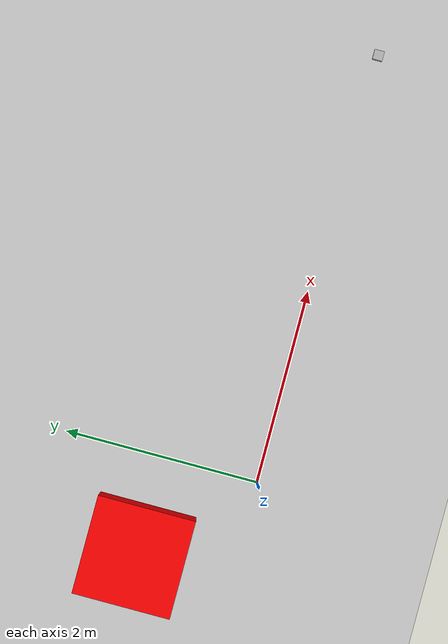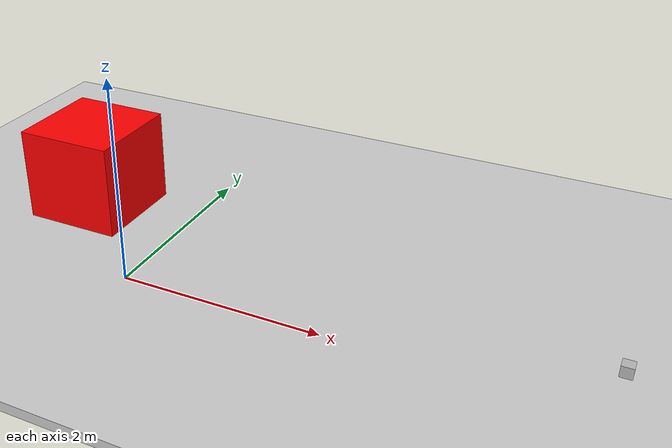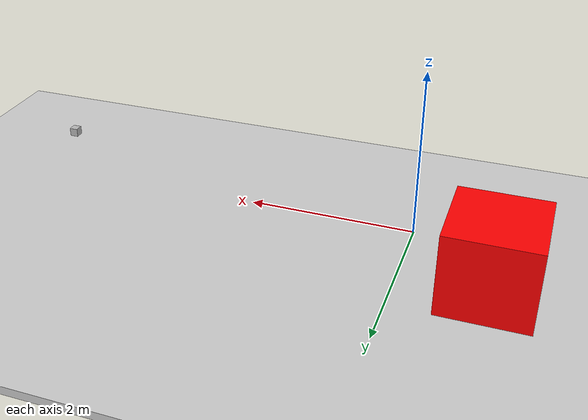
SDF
<sdf version="1.6">
 <world name="thermal_camera">
  <physics name="1ms" type="ignored">
   <max_step_size>0.001</max_step_size>
   <real_time_factor>1.0</real_time_factor>
  </physics>
  <plugin filename="ignition-gazebo-physics-system" name="ignition::gazebo::systems::Physics"/>
  <plugin filename="ignition-gazebo-sensors-system" name="ignition::gazebo::systems::Sensors">
   <render_engine>ogre2</render_engine>
  </plugin>
  <plugin filename="ignition-gazebo-scene-broadcaster-system" name="ignition::gazebo::systems::SceneBroadcaster"/>
  <plugin filename="ignition-gazebo-user-commands-system" name="ignition::gazebo::systems::UserCommands"/>
  <light type="directional" name="sun">
   <pose>0 0 10 0 0 0</pose>
   <diffuse>0.8 0.8 0.8 1</diffuse>
   <specular>0.2 0.2 0.2 1</specular>
   <attenuation>
    <range>1000</range>
    <constant>0.9</constant>
    <linear>0.01</linear>
    <quadratic>0.001</quadratic>
   </attenuation>
   <direction>-0.5 0.1 -0.9</direction>
  </light>
  <atmosphere type="adiabatic">
   <temperature>300</temperature>
   <temperature_gradient>0.1</temperature_gradient>
  </atmosphere>
  <model name="ground_plane">
   <static>true</static>
   <link name="link">
    <collision name="collision"><geometry><box><size>20 20 0.1</size></box></geometry></collision>
    <visual name="visual">
     <geometry><box><size>20 20 0.1</size></box></geometry>
     <material>
      <ambient>0.8 0.8 0.8 1</ambient>
      <diffuse>0.8 0.8 0.8 1</diffuse>
      <specular>0.8 0.8 0.8 1</specular>
     </material>
    </visual>
   </link>
  </model>
  <model name="box">
   <pose>-1 1 0.5 0 0 0</pose>
   <link name="box_link">
    <inertial>
     <inertia><ixx>1</ixx><ixy>0</ixy><ixz>0</ixz><iyy>1</iyy><iyz>0</iyz><izz>1</izz></inertia>
     <mass>1.0</mass>
    </inertial>
    <collision name="box_collision"><geometry><box><size>1 1 1</size></box></geometry></collision>
    <visual name="box_visual">
     <geometry><box><size>1 1 1</size></box></geometry>
     <material><ambient>1 0 0 1</ambient><diffuse>1 0 0 1</diffuse><specular>1 0 0 1</specular></material>
     <plugin filename="ignition-gazebo-thermal-system" name="ignition::gazebo::systems::Thermal">
      <temperature>285.0</temperature>
     </plugin>
    </visual>
   </link>
  </model>
  <model name="thermal_camera">
   <pose>4.5 0 0.5 0.0 0.0 3.14</pose>
   <link name="link">
    <pose>0.05 0.05 0.05 0 0 0</pose>
    <collision name="collision"><geometry><box><size>0.1 0.1 0.1</size></box></geometry></collision>
    <visual name="visual"><geometry><box><size>0.1 0.1 0.1</size></box></geometry></visual>
    <sensor name="thermal_camera" type="thermal">
     <camera>
      <horizontal_fov>1.047</horizontal_fov>
      <image><width>320</width><height>240</height><format>L16</format></image>
      <clip><near>0.1</near><far>100</far></clip>
     </camera>
     <always_on>1</always_on>
     <update_rate>30</update_rate>
     <visualize>true</visualize>
     <topic>thermal_camera</topic>
    </sensor>
   </link>
   <static>true</static>
  </model>
  <model name="thermal_camera_8bit">
   <pose>4.5 0 0.5 0.0 0.0 3.14</pose>
   <link name="link">
    <pose>0.05 0.05 0.05 0 0 0</pose>
    <collision name="collision"><geometry><box><size>0.1 0.1 0.1</size></box></geometry></collision>
    <visual name="visual"><geometry><box><size>0.1 0.1 0.1</size></box></geometry></visual>
    <sensor name="thermal_camera_8bit" type="thermal">
     <camera>
      <horizontal_fov>1.047</horizontal_fov>
      <image><width>320</width><height>240</height><format>L8</format></image>
      <clip><near>0.1</near><far>100</far></clip>
     </camera>
     <always_on>1</always_on>
     <update_rate>30</update_rate>
     <visualize>true</visualize>
     <topic>thermal_camera_8bit/image</topic>
     <plugin filename="ignition-gazebo-thermal-sensor-system" name="ignition::gazebo::systems::ThermalSensor">
      <min_temp>253.15</min_temp>
      <max_temp>673.15</max_temp>
      <resolution>3.0</resolution>
     </plugin>
    </sensor>
   </link>
   <static>true</static>
  </model>
 </world>
</sdf>
